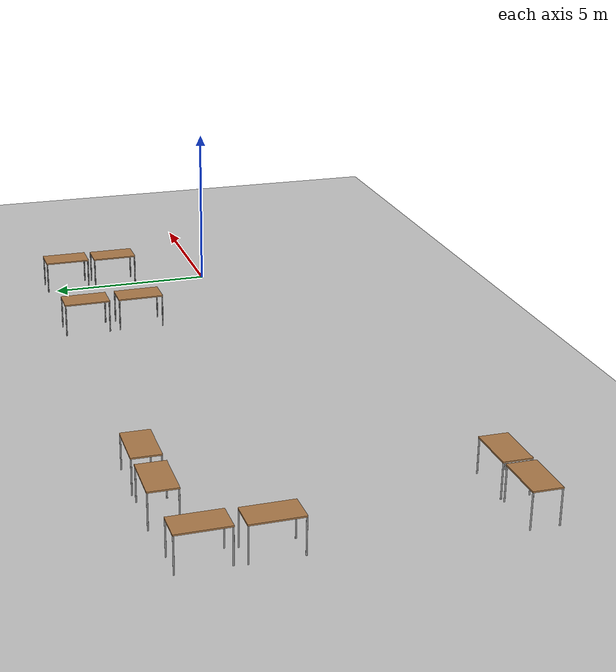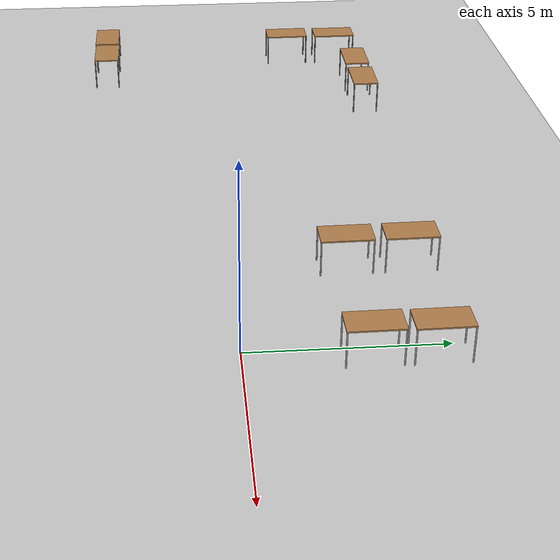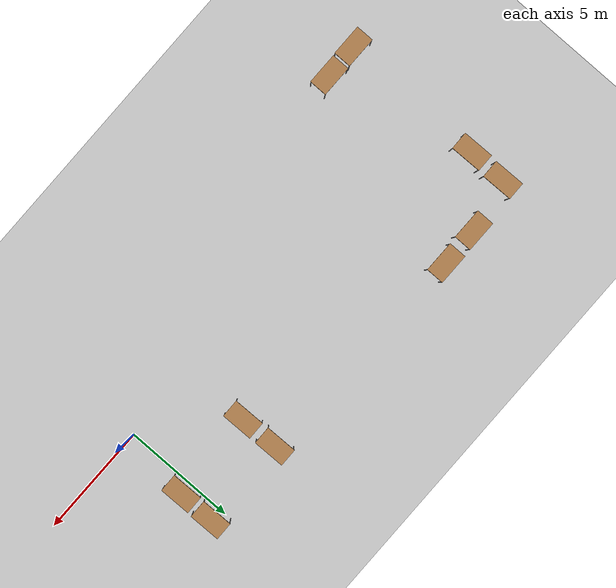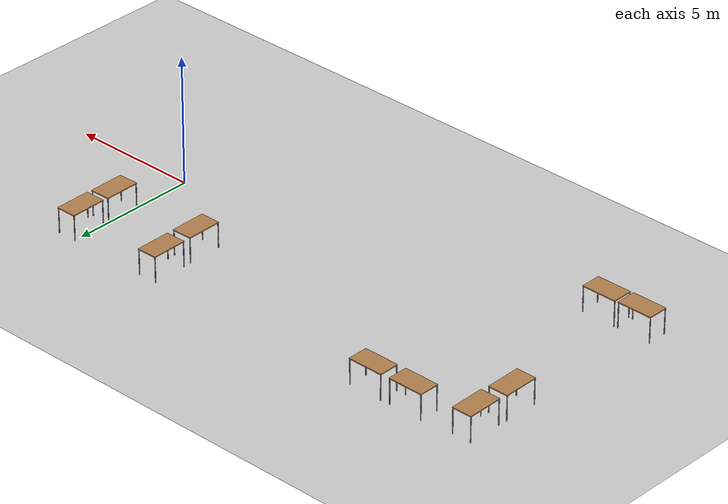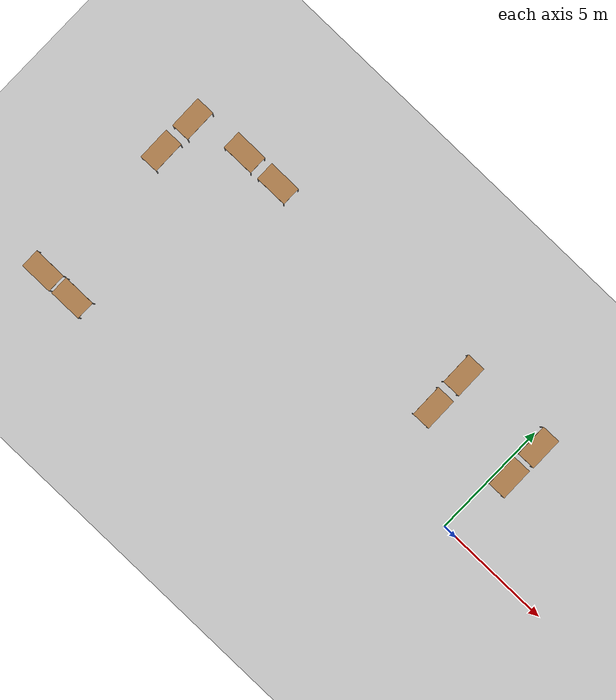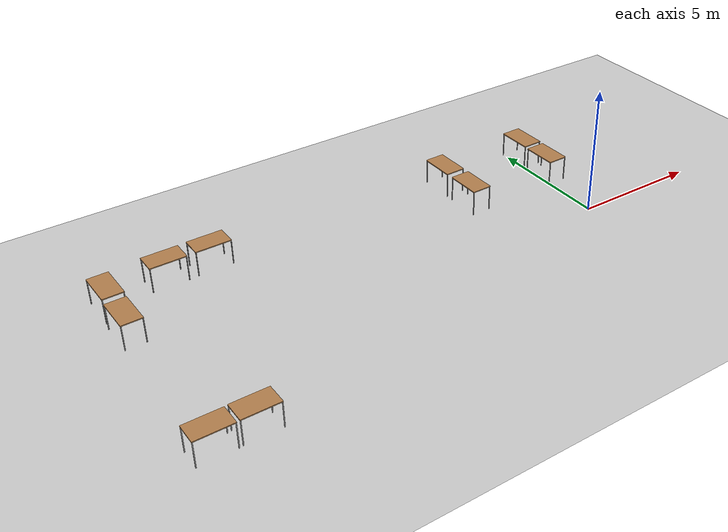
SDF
<sdf version="1.6">
 <world name="default">
  <model name="ground_plane">
   <static>1</static>
   <link name="link">
    <collision name="collision">
     <geometry><plane><normal>0 0 1</normal><size>100 100</size></plane></geometry>
     <surface><friction><ode><mu>100</mu><mu2>50</mu2></ode></friction></surface>
    </collision>
    <visual name="visual">
     <cast_shadows>0</cast_shadows>
     <geometry><plane><normal>0 0 1</normal><size>100 100</size></plane></geometry>
     <material>
      <script><uri>file://media/materials/scripts/gazebo.material</uri><name>Gazebo/Grey</name></script>
     </material>
    </visual>
   </link>
  </model>
  <model name="table_clone_4_clone_2">
   <static>0</static>
   <link name="link">
    <collision name="surface">
     <pose>0 0 1 0 -0 0</pose>
     <geometry><box><size>1.5 0.8 0.03</size></box></geometry>
     <surface><friction><ode><mu>0.6</mu><mu2>0.6</mu2></ode></friction></surface>
    </collision>
    <visual name="visual1">
     <pose>0 0 1 0 -0 0</pose>
     <geometry><box><size>1.4 0.8 0.04</size></box></geometry>
     <material>
      <script><uri>file://media/materials/scripts/gazebo.material</uri><name>Gazebo/Wood</name></script>
     </material>
    </visual>
    <collision name="front_left_leg">
     <pose>0.68 0.38 0.5 0 -0 0</pose>
     <geometry><cylinder><radius>0.02</radius><length>1</length></cylinder></geometry>
    </collision>
    <visual name="front_left_leg">
     <pose>0.68 0.38 0.5 0 -0 0</pose>
     <geometry><cylinder><radius>0.02</radius><length>1</length></cylinder></geometry>
     <material>
      <script><uri>file://media/materials/scripts/gazebo.material</uri><name>Gazebo/Grey</name></script>
     </material>
    </visual>
    <collision name="front_right_leg">
     <pose>0.68 -0.38 0.5 0 -0 0</pose>
     <geometry><cylinder><radius>0.02</radius><length>1</length></cylinder></geometry>
    </collision>
    <visual name="front_right_leg">
     <pose>0.68 -0.38 0.5 0 -0 0</pose>
     <geometry><cylinder><radius>0.02</radius><length>1</length></cylinder></geometry>
     <material>
      <script><uri>file://media/materials/scripts/gazebo.material</uri><name>Gazebo/Grey</name></script>
     </material>
    </visual>
    <collision name="back_right_leg">
     <pose>-0.68 -0.38 0.5 0 -0 0</pose>
     <geometry><cylinder><radius>0.02</radius><length>1</length></cylinder></geometry>
    </collision>
    <visual name="back_right_leg">
     <pose>-0.68 -0.38 0.5 0 -0 0</pose>
     <geometry><cylinder><radius>0.02</radius><length>1</length></cylinder></geometry>
     <material>
      <script><uri>file://media/materials/scripts/gazebo.material</uri><name>Gazebo/Grey</name></script>
     </material>
    </visual>
    <collision name="back_left_leg">
     <pose>-0.68 0.38 0.5 0 -0 0</pose>
     <geometry><cylinder><radius>0.02</radius><length>1</length></cylinder></geometry>
    </collision>
    <visual name="back_left_leg">
     <pose>-0.68 0.38 0.5 0 -0 0</pose>
     <geometry><cylinder><radius>0.02</radius><length>1</length></cylinder></geometry>
     <material>
      <script><uri>file://media/materials/scripts/gazebo.material</uri><name>Gazebo/Grey</name></script>
     </material>
    </visual>
    <inertial>
     <inertia><ixx>1</ixx><ixy>0</ixy><ixz>0</ixz><iyy>1</iyy><iyz>0</iyz><izz>1</izz></inertia>
     <mass>1</mass>
    </inertial>
   </link>
   <pose>-3.55731 4.62139 -8e-06 0 -1e-06 -1.55897</pose>
  </model>
  <model name="table_clone_4_clone_3">
   <static>0</static>
   <link name="link">
    <collision name="surface">
     <pose>0 0 1 0 -0 0</pose>
     <geometry><box><size>1.5 0.8 0.03</size></box></geometry>
     <surface><friction><ode><mu>0.6</mu><mu2>0.6</mu2></ode></friction></surface>
    </collision>
    <visual name="visual1">
     <pose>0 0 1 0 -0 0</pose>
     <geometry><box><size>1.4 0.8 0.04</size></box></geometry>
     <material>
      <script><uri>file://media/materials/scripts/gazebo.material</uri><name>Gazebo/Wood</name></script>
     </material>
    </visual>
    <collision name="front_left_leg">
     <pose>0.68 0.38 0.5 0 -0 0</pose>
     <geometry><cylinder><radius>0.02</radius><length>1</length></cylinder></geometry>
    </collision>
    <visual name="front_left_leg">
     <pose>0.68 0.38 0.5 0 -0 0</pose>
     <geometry><cylinder><radius>0.02</radius><length>1</length></cylinder></geometry>
     <material>
      <script><uri>file://media/materials/scripts/gazebo.material</uri><name>Gazebo/Grey</name></script>
     </material>
    </visual>
    <collision name="front_right_leg">
     <pose>0.68 -0.38 0.5 0 -0 0</pose>
     <geometry><cylinder><radius>0.02</radius><length>1</length></cylinder></geometry>
    </collision>
    <visual name="front_right_leg">
     <pose>0.68 -0.38 0.5 0 -0 0</pose>
     <geometry><cylinder><radius>0.02</radius><length>1</length></cylinder></geometry>
     <material>
      <script><uri>file://media/materials/scripts/gazebo.material</uri><name>Gazebo/Grey</name></script>
     </material>
    </visual>
    <collision name="back_right_leg">
     <pose>-0.68 -0.38 0.5 0 -0 0</pose>
     <geometry><cylinder><radius>0.02</radius><length>1</length></cylinder></geometry>
    </collision>
    <visual name="back_right_leg">
     <pose>-0.68 -0.38 0.5 0 -0 0</pose>
     <geometry><cylinder><radius>0.02</radius><length>1</length></cylinder></geometry>
     <material>
      <script><uri>file://media/materials/scripts/gazebo.material</uri><name>Gazebo/Grey</name></script>
     </material>
    </visual>
    <collision name="back_left_leg">
     <pose>-0.68 0.38 0.5 0 -0 0</pose>
     <geometry><cylinder><radius>0.02</radius><length>1</length></cylinder></geometry>
    </collision>
    <visual name="back_left_leg">
     <pose>-0.68 0.38 0.5 0 -0 0</pose>
     <geometry><cylinder><radius>0.02</radius><length>1</length></cylinder></geometry>
     <material>
      <script><uri>file://media/materials/scripts/gazebo.material</uri><name>Gazebo/Grey</name></script>
     </material>
    </visual>
    <inertial>
     <inertia><ixx>1</ixx><ixy>0</ixy><ixz>0</ixz><iyy>1</iyy><iyz>0</iyz><izz>1</izz></inertia>
     <mass>1</mass>
    </inertial>
   </link>
   <pose>-3.53052 2.94136 -1e-06 0 1e-06 -1.55897</pose>
  </model>
  <model name="table_clone_4_clone_4">
   <static>0</static>
   <link name="link">
    <collision name="surface">
     <pose>0 0 1 0 -0 0</pose>
     <geometry><box><size>1.5 0.8 0.03</size></box></geometry>
     <surface><friction><ode><mu>0.6</mu><mu2>0.6</mu2></ode></friction></surface>
    </collision>
    <visual name="visual1">
     <pose>0 0 1 0 -0 0</pose>
     <geometry><box><size>1.4 0.8 0.04</size></box></geometry>
     <material>
      <script><uri>file://media/materials/scripts/gazebo.material</uri><name>Gazebo/Wood</name></script>
     </material>
    </visual>
    <collision name="front_left_leg">
     <pose>0.68 0.38 0.5 0 -0 0</pose>
     <geometry><cylinder><radius>0.02</radius><length>1</length></cylinder></geometry>
    </collision>
    <visual name="front_left_leg">
     <pose>0.68 0.38 0.5 0 -0 0</pose>
     <geometry><cylinder><radius>0.02</radius><length>1</length></cylinder></geometry>
     <material>
      <script><uri>file://media/materials/scripts/gazebo.material</uri><name>Gazebo/Grey</name></script>
     </material>
    </visual>
    <collision name="front_right_leg">
     <pose>0.68 -0.38 0.5 0 -0 0</pose>
     <geometry><cylinder><radius>0.02</radius><length>1</length></cylinder></geometry>
    </collision>
    <visual name="front_right_leg">
     <pose>0.68 -0.38 0.5 0 -0 0</pose>
     <geometry><cylinder><radius>0.02</radius><length>1</length></cylinder></geometry>
     <material>
      <script><uri>file://media/materials/scripts/gazebo.material</uri><name>Gazebo/Grey</name></script>
     </material>
    </visual>
    <collision name="back_right_leg">
     <pose>-0.68 -0.38 0.5 0 -0 0</pose>
     <geometry><cylinder><radius>0.02</radius><length>1</length></cylinder></geometry>
    </collision>
    <visual name="back_right_leg">
     <pose>-0.68 -0.38 0.5 0 -0 0</pose>
     <geometry><cylinder><radius>0.02</radius><length>1</length></cylinder></geometry>
     <material>
      <script><uri>file://media/materials/scripts/gazebo.material</uri><name>Gazebo/Grey</name></script>
     </material>
    </visual>
    <collision name="back_left_leg">
     <pose>-0.68 0.38 0.5 0 -0 0</pose>
     <geometry><cylinder><radius>0.02</radius><length>1</length></cylinder></geometry>
    </collision>
    <visual name="back_left_leg">
     <pose>-0.68 0.38 0.5 0 -0 0</pose>
     <geometry><cylinder><radius>0.02</radius><length>1</length></cylinder></geometry>
     <material>
      <script><uri>file://media/materials/scripts/gazebo.material</uri><name>Gazebo/Grey</name></script>
     </material>
    </visual>
    <inertial>
     <inertia><ixx>1</ixx><ixy>0</ixy><ixz>0</ixz><iyy>1</iyy><iyz>0</iyz><izz>1</izz></inertia>
     <mass>1</mass>
    </inertial>
   </link>
   <pose>0.376423 4.61875 -8e-06 0 -1e-06 -1.55897</pose>
  </model>
  <model name="table_clone_4_clone_5">
   <static>0</static>
   <link name="link">
    <collision name="surface">
     <pose>0 0 1 0 -0 0</pose>
     <geometry><box><size>1.5 0.8 0.03</size></box></geometry>
     <surface><friction><ode><mu>0.6</mu><mu2>0.6</mu2></ode></friction></surface>
    </collision>
    <visual name="visual1">
     <pose>0 0 1 0 -0 0</pose>
     <geometry><box><size>1.4 0.8 0.04</size></box></geometry>
     <material>
      <script><uri>file://media/materials/scripts/gazebo.material</uri><name>Gazebo/Wood</name></script>
     </material>
    </visual>
    <collision name="front_left_leg">
     <pose>0.68 0.38 0.5 0 -0 0</pose>
     <geometry><cylinder><radius>0.02</radius><length>1</length></cylinder></geometry>
    </collision>
    <visual name="front_left_leg">
     <pose>0.68 0.38 0.5 0 -0 0</pose>
     <geometry><cylinder><radius>0.02</radius><length>1</length></cylinder></geometry>
     <material>
      <script><uri>file://media/materials/scripts/gazebo.material</uri><name>Gazebo/Grey</name></script>
     </material>
    </visual>
    <collision name="front_right_leg">
     <pose>0.68 -0.38 0.5 0 -0 0</pose>
     <geometry><cylinder><radius>0.02</radius><length>1</length></cylinder></geometry>
    </collision>
    <visual name="front_right_leg">
     <pose>0.68 -0.38 0.5 0 -0 0</pose>
     <geometry><cylinder><radius>0.02</radius><length>1</length></cylinder></geometry>
     <material>
      <script><uri>file://media/materials/scripts/gazebo.material</uri><name>Gazebo/Grey</name></script>
     </material>
    </visual>
    <collision name="back_right_leg">
     <pose>-0.68 -0.38 0.5 0 -0 0</pose>
     <geometry><cylinder><radius>0.02</radius><length>1</length></cylinder></geometry>
    </collision>
    <visual name="back_right_leg">
     <pose>-0.68 -0.38 0.5 0 -0 0</pose>
     <geometry><cylinder><radius>0.02</radius><length>1</length></cylinder></geometry>
     <material>
      <script><uri>file://media/materials/scripts/gazebo.material</uri><name>Gazebo/Grey</name></script>
     </material>
    </visual>
    <collision name="back_left_leg">
     <pose>-0.68 0.38 0.5 0 -0 0</pose>
     <geometry><cylinder><radius>0.02</radius><length>1</length></cylinder></geometry>
    </collision>
    <visual name="back_left_leg">
     <pose>-0.68 0.38 0.5 0 -0 0</pose>
     <geometry><cylinder><radius>0.02</radius><length>1</length></cylinder></geometry>
     <material>
      <script><uri>file://media/materials/scripts/gazebo.material</uri><name>Gazebo/Grey</name></script>
     </material>
    </visual>
    <inertial>
     <inertia><ixx>1</ixx><ixy>0</ixy><ixz>0</ixz><iyy>1</iyy><iyz>0</iyz><izz>1</izz></inertia>
     <mass>1</mass>
    </inertial>
   </link>
   <pose>0.364459 3.03386 -1e-06 0 1e-06 -1.55897</pose>
  </model>
  <model name="table_clone_4_clone_6">
   <static>0</static>
   <link name="link">
    <collision name="surface">
     <pose>0 0 1 0 -0 0</pose>
     <geometry><box><size>1.5 0.8 0.03</size></box></geometry>
     <surface><friction><ode><mu>0.6</mu><mu2>0.6</mu2></ode></friction></surface>
    </collision>
    <visual name="visual1">
     <pose>0 0 1 0 -0 0</pose>
     <geometry><box><size>1.4 0.8 0.04</size></box></geometry>
     <material>
      <script><uri>file://media/materials/scripts/gazebo.material</uri><name>Gazebo/Wood</name></script>
     </material>
    </visual>
    <collision name="front_left_leg">
     <pose>0.68 0.38 0.5 0 -0 0</pose>
     <geometry><cylinder><radius>0.02</radius><length>1</length></cylinder></geometry>
    </collision>
    <visual name="front_left_leg">
     <pose>0.68 0.38 0.5 0 -0 0</pose>
     <geometry><cylinder><radius>0.02</radius><length>1</length></cylinder></geometry>
     <material>
      <script><uri>file://media/materials/scripts/gazebo.material</uri><name>Gazebo/Grey</name></script>
     </material>
    </visual>
    <collision name="front_right_leg">
     <pose>0.68 -0.38 0.5 0 -0 0</pose>
     <geometry><cylinder><radius>0.02</radius><length>1</length></cylinder></geometry>
    </collision>
    <visual name="front_right_leg">
     <pose>0.68 -0.38 0.5 0 -0 0</pose>
     <geometry><cylinder><radius>0.02</radius><length>1</length></cylinder></geometry>
     <material>
      <script><uri>file://media/materials/scripts/gazebo.material</uri><name>Gazebo/Grey</name></script>
     </material>
    </visual>
    <collision name="back_right_leg">
     <pose>-0.68 -0.38 0.5 0 -0 0</pose>
     <geometry><cylinder><radius>0.02</radius><length>1</length></cylinder></geometry>
    </collision>
    <visual name="back_right_leg">
     <pose>-0.68 -0.38 0.5 0 -0 0</pose>
     <geometry><cylinder><radius>0.02</radius><length>1</length></cylinder></geometry>
     <material>
      <script><uri>file://media/materials/scripts/gazebo.material</uri><name>Gazebo/Grey</name></script>
     </material>
    </visual>
    <collision name="back_left_leg">
     <pose>-0.68 0.38 0.5 0 -0 0</pose>
     <geometry><cylinder><radius>0.02</radius><length>1</length></cylinder></geometry>
    </collision>
    <visual name="back_left_leg">
     <pose>-0.68 0.38 0.5 0 -0 0</pose>
     <geometry><cylinder><radius>0.02</radius><length>1</length></cylinder></geometry>
     <material>
      <script><uri>file://media/materials/scripts/gazebo.material</uri><name>Gazebo/Grey</name></script>
     </material>
    </visual>
    <inertial>
     <inertia><ixx>1</ixx><ixy>0</ixy><ixz>0</ixz><iyy>1</iyy><iyz>0</iyz><izz>1</izz></inertia>
     <mass>1</mass>
    </inertial>
   </link>
   <pose>-17.6715 4.49427 -8e-06 0 -1e-06 -1.55897</pose>
  </model>
  <model name="table_clone_4_clone_7">
   <static>0</static>
   <link name="link">
    <collision name="surface">
     <pose>0 0 1 0 -0 0</pose>
     <geometry><box><size>1.5 0.8 0.03</size></box></geometry>
     <surface><friction><ode><mu>0.6</mu><mu2>0.6</mu2></ode></friction></surface>
    </collision>
    <visual name="visual1">
     <pose>0 0 1 0 -0 0</pose>
     <geometry><box><size>1.4 0.8 0.04</size></box></geometry>
     <material>
      <script><uri>file://media/materials/scripts/gazebo.material</uri><name>Gazebo/Wood</name></script>
     </material>
    </visual>
    <collision name="front_left_leg">
     <pose>0.68 0.38 0.5 0 -0 0</pose>
     <geometry><cylinder><radius>0.02</radius><length>1</length></cylinder></geometry>
    </collision>
    <visual name="front_left_leg">
     <pose>0.68 0.38 0.5 0 -0 0</pose>
     <geometry><cylinder><radius>0.02</radius><length>1</length></cylinder></geometry>
     <material>
      <script><uri>file://media/materials/scripts/gazebo.material</uri><name>Gazebo/Grey</name></script>
     </material>
    </visual>
    <collision name="front_right_leg">
     <pose>0.68 -0.38 0.5 0 -0 0</pose>
     <geometry><cylinder><radius>0.02</radius><length>1</length></cylinder></geometry>
    </collision>
    <visual name="front_right_leg">
     <pose>0.68 -0.38 0.5 0 -0 0</pose>
     <geometry><cylinder><radius>0.02</radius><length>1</length></cylinder></geometry>
     <material>
      <script><uri>file://media/materials/scripts/gazebo.material</uri><name>Gazebo/Grey</name></script>
     </material>
    </visual>
    <collision name="back_right_leg">
     <pose>-0.68 -0.38 0.5 0 -0 0</pose>
     <geometry><cylinder><radius>0.02</radius><length>1</length></cylinder></geometry>
    </collision>
    <visual name="back_right_leg">
     <pose>-0.68 -0.38 0.5 0 -0 0</pose>
     <geometry><cylinder><radius>0.02</radius><length>1</length></cylinder></geometry>
     <material>
      <script><uri>file://media/materials/scripts/gazebo.material</uri><name>Gazebo/Grey</name></script>
     </material>
    </visual>
    <collision name="back_left_leg">
     <pose>-0.68 0.38 0.5 0 -0 0</pose>
     <geometry><cylinder><radius>0.02</radius><length>1</length></cylinder></geometry>
    </collision>
    <visual name="back_left_leg">
     <pose>-0.68 0.38 0.5 0 -0 0</pose>
     <geometry><cylinder><radius>0.02</radius><length>1</length></cylinder></geometry>
     <material>
      <script><uri>file://media/materials/scripts/gazebo.material</uri><name>Gazebo/Grey</name></script>
     </material>
    </visual>
    <inertial>
     <inertia><ixx>1</ixx><ixy>0</ixy><ixz>0</ixz><iyy>1</iyy><iyz>0</iyz><izz>1</izz></inertia>
     <mass>1</mass>
    </inertial>
   </link>
   <pose>-17.708 2.80943 -1e-06 0 1e-06 -1.55897</pose>
  </model>
  <model name="table_clone_3_clone">
   <static>0</static>
   <link name="link">
    <collision name="surface">
     <pose>0 0 1 0 -0 0</pose>
     <geometry><box><size>1.5 0.8 0.03</size></box></geometry>
     <surface><friction><ode><mu>0.6</mu><mu2>0.6</mu2></ode></friction></surface>
    </collision>
    <visual name="visual1">
     <pose>0 0 1 0 -0 0</pose>
     <geometry><box><size>1.4 0.8 0.04</size></box></geometry>
     <material>
      <script><uri>file://media/materials/scripts/gazebo.material</uri><name>Gazebo/Wood</name></script>
     </material>
    </visual>
    <collision name="front_left_leg">
     <pose>0.68 0.38 0.5 0 -0 0</pose>
     <geometry><cylinder><radius>0.02</radius><length>1</length></cylinder></geometry>
    </collision>
    <visual name="front_left_leg">
     <pose>0.68 0.38 0.5 0 -0 0</pose>
     <geometry><cylinder><radius>0.02</radius><length>1</length></cylinder></geometry>
     <material>
      <script><uri>file://media/materials/scripts/gazebo.material</uri><name>Gazebo/Grey</name></script>
     </material>
    </visual>
    <collision name="front_right_leg">
     <pose>0.68 -0.38 0.5 0 -0 0</pose>
     <geometry><cylinder><radius>0.02</radius><length>1</length></cylinder></geometry>
    </collision>
    <visual name="front_right_leg">
     <pose>0.68 -0.38 0.5 0 -0 0</pose>
     <geometry><cylinder><radius>0.02</radius><length>1</length></cylinder></geometry>
     <material>
      <script><uri>file://media/materials/scripts/gazebo.material</uri><name>Gazebo/Grey</name></script>
     </material>
    </visual>
    <collision name="back_right_leg">
     <pose>-0.68 -0.38 0.5 0 -0 0</pose>
     <geometry><cylinder><radius>0.02</radius><length>1</length></cylinder></geometry>
    </collision>
    <visual name="back_right_leg">
     <pose>-0.68 -0.38 0.5 0 -0 0</pose>
     <geometry><cylinder><radius>0.02</radius><length>1</length></cylinder></geometry>
     <material>
      <script><uri>file://media/materials/scripts/gazebo.material</uri><name>Gazebo/Grey</name></script>
     </material>
    </visual>
    <collision name="back_left_leg">
     <pose>-0.68 0.38 0.5 0 -0 0</pose>
     <geometry><cylinder><radius>0.02</radius><length>1</length></cylinder></geometry>
    </collision>
    <visual name="back_left_leg">
     <pose>-0.68 0.38 0.5 0 -0 0</pose>
     <geometry><cylinder><radius>0.02</radius><length>1</length></cylinder></geometry>
     <material>
      <script><uri>file://media/materials/scripts/gazebo.material</uri><name>Gazebo/Grey</name></script>
     </material>
    </visual>
    <inertial>
     <inertia><ixx>1</ixx><ixy>0</ixy><ixz>0</ixz><iyy>1</iyy><iyz>0</iyz><izz>1</izz></inertia>
     <mass>1</mass>
    </inertial>
   </link>
   <pose>-15.3803 4.94145 -1e-06 1e-06 -0 4e-06</pose>
  </model>
  <model name="table_clone_3_clone_0">
   <static>0</static>
   <link name="link">
    <collision name="surface">
     <pose>0 0 1 0 -0 0</pose>
     <geometry><box><size>1.5 0.8 0.03</size></box></geometry>
     <surface><friction><ode><mu>0.6</mu><mu2>0.6</mu2></ode></friction></surface>
    </collision>
    <visual name="visual1">
     <pose>0 0 1 0 -0 0</pose>
     <geometry><box><size>1.4 0.8 0.04</size></box></geometry>
     <material>
      <script><uri>file://media/materials/scripts/gazebo.material</uri><name>Gazebo/Wood</name></script>
     </material>
    </visual>
    <collision name="front_left_leg">
     <pose>0.68 0.38 0.5 0 -0 0</pose>
     <geometry><cylinder><radius>0.02</radius><length>1</length></cylinder></geometry>
    </collision>
    <visual name="front_left_leg">
     <pose>0.68 0.38 0.5 0 -0 0</pose>
     <geometry><cylinder><radius>0.02</radius><length>1</length></cylinder></geometry>
     <material>
      <script><uri>file://media/materials/scripts/gazebo.material</uri><name>Gazebo/Grey</name></script>
     </material>
    </visual>
    <collision name="front_right_leg">
     <pose>0.68 -0.38 0.5 0 -0 0</pose>
     <geometry><cylinder><radius>0.02</radius><length>1</length></cylinder></geometry>
    </collision>
    <visual name="front_right_leg">
     <pose>0.68 -0.38 0.5 0 -0 0</pose>
     <geometry><cylinder><radius>0.02</radius><length>1</length></cylinder></geometry>
     <material>
      <script><uri>file://media/materials/scripts/gazebo.material</uri><name>Gazebo/Grey</name></script>
     </material>
    </visual>
    <collision name="back_right_leg">
     <pose>-0.68 -0.38 0.5 0 -0 0</pose>
     <geometry><cylinder><radius>0.02</radius><length>1</length></cylinder></geometry>
    </collision>
    <visual name="back_right_leg">
     <pose>-0.68 -0.38 0.5 0 -0 0</pose>
     <geometry><cylinder><radius>0.02</radius><length>1</length></cylinder></geometry>
     <material>
      <script><uri>file://media/materials/scripts/gazebo.material</uri><name>Gazebo/Grey</name></script>
     </material>
    </visual>
    <collision name="back_left_leg">
     <pose>-0.68 0.38 0.5 0 -0 0</pose>
     <geometry><cylinder><radius>0.02</radius><length>1</length></cylinder></geometry>
    </collision>
    <visual name="back_left_leg">
     <pose>-0.68 0.38 0.5 0 -0 0</pose>
     <geometry><cylinder><radius>0.02</radius><length>1</length></cylinder></geometry>
     <material>
      <script><uri>file://media/materials/scripts/gazebo.material</uri><name>Gazebo/Grey</name></script>
     </material>
    </visual>
    <inertial>
     <inertia><ixx>1</ixx><ixy>0</ixy><ixz>0</ixz><iyy>1</iyy><iyz>0</iyz><izz>1</izz></inertia>
     <mass>1</mass>
    </inertial>
   </link>
   <pose>-13.6523 4.96734 -9e-06 -1e-06 -0 4e-06</pose>
  </model>
  <model name="table_clone_3_clone_1">
   <static>0</static>
   <link name="link">
    <collision name="surface">
     <pose>0 0 1 0 -0 0</pose>
     <geometry><box><size>1.5 0.8 0.03</size></box></geometry>
     <surface><friction><ode><mu>0.6</mu><mu2>0.6</mu2></ode></friction></surface>
    </collision>
    <visual name="visual1">
     <pose>0 0 1 0 -0 0</pose>
     <geometry><box><size>1.4 0.8 0.04</size></box></geometry>
     <material>
      <script><uri>file://media/materials/scripts/gazebo.material</uri><name>Gazebo/Wood</name></script>
     </material>
    </visual>
    <collision name="front_left_leg">
     <pose>0.68 0.38 0.5 0 -0 0</pose>
     <geometry><cylinder><radius>0.02</radius><length>1</length></cylinder></geometry>
    </collision>
    <visual name="front_left_leg">
     <pose>0.68 0.38 0.5 0 -0 0</pose>
     <geometry><cylinder><radius>0.02</radius><length>1</length></cylinder></geometry>
     <material>
      <script><uri>file://media/materials/scripts/gazebo.material</uri><name>Gazebo/Grey</name></script>
     </material>
    </visual>
    <collision name="front_right_leg">
     <pose>0.68 -0.38 0.5 0 -0 0</pose>
     <geometry><cylinder><radius>0.02</radius><length>1</length></cylinder></geometry>
    </collision>
    <visual name="front_right_leg">
     <pose>0.68 -0.38 0.5 0 -0 0</pose>
     <geometry><cylinder><radius>0.02</radius><length>1</length></cylinder></geometry>
     <material>
      <script><uri>file://media/materials/scripts/gazebo.material</uri><name>Gazebo/Grey</name></script>
     </material>
    </visual>
    <collision name="back_right_leg">
     <pose>-0.68 -0.38 0.5 0 -0 0</pose>
     <geometry><cylinder><radius>0.02</radius><length>1</length></cylinder></geometry>
    </collision>
    <visual name="back_right_leg">
     <pose>-0.68 -0.38 0.5 0 -0 0</pose>
     <geometry><cylinder><radius>0.02</radius><length>1</length></cylinder></geometry>
     <material>
      <script><uri>file://media/materials/scripts/gazebo.material</uri><name>Gazebo/Grey</name></script>
     </material>
    </visual>
    <collision name="back_left_leg">
     <pose>-0.68 0.38 0.5 0 -0 0</pose>
     <geometry><cylinder><radius>0.02</radius><length>1</length></cylinder></geometry>
    </collision>
    <visual name="back_left_leg">
     <pose>-0.68 0.38 0.5 0 -0 0</pose>
     <geometry><cylinder><radius>0.02</radius><length>1</length></cylinder></geometry>
     <material>
      <script><uri>file://media/materials/scripts/gazebo.material</uri><name>Gazebo/Grey</name></script>
     </material>
    </visual>
    <inertial>
     <inertia><ixx>1</ixx><ixy>0</ixy><ixz>0</ixz><iyy>1</iyy><iyz>0</iyz><izz>1</izz></inertia>
     <mass>1</mass>
    </inertial>
   </link>
   <pose>-17.7676 -3.57146 -8e-06 0 -0 4e-06</pose>
  </model>
  <model name="table_clone_3_clone_2">
   <static>0</static>
   <link name="link">
    <collision name="surface">
     <pose>0 0 1 0 -0 0</pose>
     <geometry><box><size>1.5 0.8 0.03</size></box></geometry>
     <surface><friction><ode><mu>0.6</mu><mu2>0.6</mu2></ode></friction></surface>
    </collision>
    <visual name="visual1">
     <pose>0 0 1 0 -0 0</pose>
     <geometry><box><size>1.4 0.8 0.04</size></box></geometry>
     <material>
      <script><uri>file://media/materials/scripts/gazebo.material</uri><name>Gazebo/Wood</name></script>
     </material>
    </visual>
    <collision name="front_left_leg">
     <pose>0.68 0.38 0.5 0 -0 0</pose>
     <geometry><cylinder><radius>0.02</radius><length>1</length></cylinder></geometry>
    </collision>
    <visual name="front_left_leg">
     <pose>0.68 0.38 0.5 0 -0 0</pose>
     <geometry><cylinder><radius>0.02</radius><length>1</length></cylinder></geometry>
     <material>
      <script><uri>file://media/materials/scripts/gazebo.material</uri><name>Gazebo/Grey</name></script>
     </material>
    </visual>
    <collision name="front_right_leg">
     <pose>0.68 -0.38 0.5 0 -0 0</pose>
     <geometry><cylinder><radius>0.02</radius><length>1</length></cylinder></geometry>
    </collision>
    <visual name="front_right_leg">
     <pose>0.68 -0.38 0.5 0 -0 0</pose>
     <geometry><cylinder><radius>0.02</radius><length>1</length></cylinder></geometry>
     <material>
      <script><uri>file://media/materials/scripts/gazebo.material</uri><name>Gazebo/Grey</name></script>
     </material>
    </visual>
    <collision name="back_right_leg">
     <pose>-0.68 -0.38 0.5 0 -0 0</pose>
     <geometry><cylinder><radius>0.02</radius><length>1</length></cylinder></geometry>
    </collision>
    <visual name="back_right_leg">
     <pose>-0.68 -0.38 0.5 0 -0 0</pose>
     <geometry><cylinder><radius>0.02</radius><length>1</length></cylinder></geometry>
     <material>
      <script><uri>file://media/materials/scripts/gazebo.material</uri><name>Gazebo/Grey</name></script>
     </material>
    </visual>
    <collision name="back_left_leg">
     <pose>-0.68 0.38 0.5 0 -0 0</pose>
     <geometry><cylinder><radius>0.02</radius><length>1</length></cylinder></geometry>
    </collision>
    <visual name="back_left_leg">
     <pose>-0.68 0.38 0.5 0 -0 0</pose>
     <geometry><cylinder><radius>0.02</radius><length>1</length></cylinder></geometry>
     <material>
      <script><uri>file://media/materials/scripts/gazebo.material</uri><name>Gazebo/Grey</name></script>
     </material>
    </visual>
    <inertial>
     <inertia><ixx>1</ixx><ixy>0</ixy><ixz>0</ixz><iyy>1</iyy><iyz>0</iyz><izz>1</izz></inertia>
     <mass>1</mass>
    </inertial>
   </link>
   <pose>-16.2614 -3.54844 -1e-06 -1e-06 1e-06 4e-06</pose>
  </model>
 </world>
</sdf>
